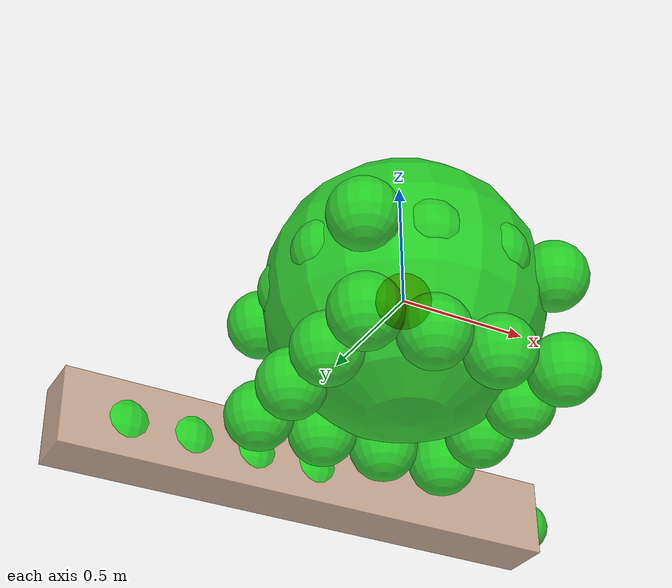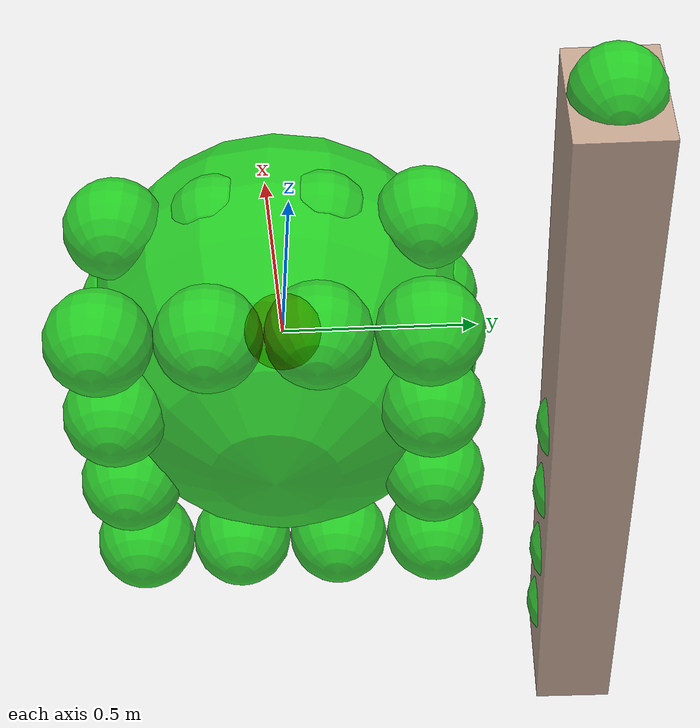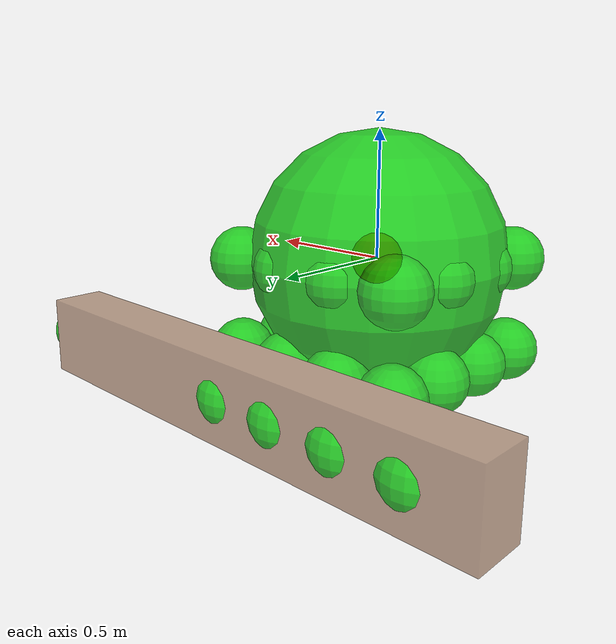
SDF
<?xml version="1.0"?>
<sdf version="1.7">
  <model name="simple_maze">
    <!-- Ghost body of negligible mass. -->
    <link name="sphere_ghost_body">
      <inertial>
        <mass>1.0e-6</mass>
        <inertia>
          <ixx>1.0e-6</ixx>
          <ixy>0</ixy>
          <ixz>0</ixz>
          <iyy>1.0e-6</iyy>
          <iyz>0</iyz>
          <izz>1.0e-6</izz>
        </inertia>
      </inertial>
    </link>
    <!-- The x slider will have an actuator with a corresponding input port
         in our MultibodyPlant model so that we can apply an external force.
    -->
    <joint name="sphere_x_slider" type="prismatic">
      <parent>world</parent>
      <child>sphere_ghost_body</child>
      <axis>
        <xyz>1 0 0</xyz>
      </axis>
    </joint>
    <!-- The y slider allows the box to freely move up and down. Thus, the
         box would free fall if it wasn't for the contact with the ground. -->
    <joint name="sphere_y_slider" type="prismatic">
      <parent>sphere_ghost_body</parent>
      <child>sphere_actuated</child>
      <axis>
        <xyz>0 1 0</xyz>
      </axis>
    </joint>
    <!-- The model for a solid box of uniform density. -->
    <link name="sphere_actuated">
      <inertial>
        <mass>1.0</mass>
        <inertia>
          <ixx>0.004</ixx>
          <ixy>0</ixy>
          <ixz>0</ixz>
          <iyy>0.004</iyy>
          <iyz>0</iyz>
          <izz>0.004</izz>
        </inertia>
      </inertial>
      <visual name="visual">
        <geometry>
          <sphere>
            <radius>0.1</radius>
          </sphere>
        </geometry>
        <material>
          <diffuse>1.0 0 0 1.0</diffuse>
        </material>
      </visual>
      <collision name="collision">
        <geometry>
          <sphere>
            <radius>0.1</radius>
          </sphere>
        </geometry>
        <surface>
          <friction>
            <ode>
              <mu>1.0</mu>
              <mu2>1.0</mu2>
            </ode>
          </friction>
        </surface>
      </collision>
    </link>

    <!-- The model for a solid box of uniform density. -->
    <link name="box_ghost_body_x">
      <inertial>
        <mass>1.0e-6</mass>
        <inertia>
          <ixx>1.0e-6</ixx>
          <ixy>0</ixy>
          <ixz>0</ixz>
          <iyy>1.0e-6</iyy>
          <iyz>0</iyz>
          <izz>1.0e-6</izz>
        </inertia>
      </inertial>
    </link>

    <link name="box_ghost_body_y">
      <inertial>
        <mass>1.0e-6</mass>
        <inertia>
          <ixx>1.0e-6</ixx>
          <ixy>0</ixy>
          <ixz>0</ixz>
          <iyy>1.0e-6</iyy>
          <iyz>0</iyz>
          <izz>1.0e-6</izz>
        </inertia>
      </inertial>
    </link>

    <joint name="box_x_slider" type="prismatic">
      <parent>world</parent>
      <child>box_ghost_body_x</child>
      <axis>
        <xyz>1 0 0</xyz>
        <!-- Drake attaches an actuator to all joints with a non-zero effort
             limit. We do not want an actuator for this joint. -->
        <limit>
          <effort>0</effort>
        </limit>
      	<dynamics>
      	  <damping>10.0</damping>
      	</dynamics>
      </axis>
    </joint>

    <joint name="y_slider" type="prismatic">
      <parent>box_ghost_body_x</parent>
      <child>box_ghost_body_y</child>
      <axis>
        <xyz>0 1 0</xyz>
        <!-- Drake attaches an actuator to all joints with a non-zero effort
             limit. We do not want an actuator for this joint and therefore we
             set a zero effort limit. -->
        <limit>
          <effort>0</effort>
        </limit>
      	<dynamics>
      	  <damping>10.0</damping>
      	</dynamics>
      </axis>
    </joint>

    <joint name="rotation" type="revolute">
      <parent>box_ghost_body_y</parent>
      <child>box</child>
      <axis>
        <xyz>0 0 1</xyz>
        <!-- Drake attaches an actuator to all joints with a non-zero effort
             limit. We do not want an actuator for this joint and therefore we
             set a zero effort limit. -->
        <limit>
          <effort>0</effort>
        </limit>
      	<dynamics>
      	  <damping>10.0</damping>
      	</dynamics>
      </axis>
    </joint>

    <link name="box">
      <inertial>
        <mass>5.0</mass>
        <inertia>
          <ixx>0.166666666666667</ixx>
          <ixy>0</ixy>
          <ixz>0</ixz>
          <iyy>0.166666666666667</iyy>
          <iyz>0</iyz>
          <izz>0.166666666666667</izz>
        </inertia>
      </inertial>

      <collision name="sphere_collision">
        <geometry>
          <sphere>
            <radius>0.505</radius>
          </sphere>
        </geometry>
      </collision>
      <visual name="sphere_collision_visual">
        <geometry>
          <sphere>
            <radius>0.505</radius>
          </sphere>
        </geometry>
        <material>
          <diffuse>0.0 0.8 0.0 0.8</diffuse>
        </material>
      </visual>

      <collision name="plus_x_plus_y_1">
        <pose> 0.375 0.125 0.0 0 0 0</pose>
        <geometry>
          <sphere>
            <radius>0.125</radius>
          </sphere>
        </geometry>
      </collision>
      <visual name="plus_x_plus_y_1">
        <pose> 0.375 0.125 0.0 0 0 0</pose>
        <geometry>
          <sphere>
            <radius>0.125</radius>
          </sphere>
        </geometry>
        <material>
          <diffuse>0.0 0.8 0.0 0.8</diffuse>
        </material>
      </visual>

      <collision name="plus_x_plus_y_2">
        <pose> 0.375 0.375 0.0 0 0 0</pose>
        <geometry>
          <sphere>
            <radius>0.125</radius>
          </sphere>
        </geometry>
      </collision>
      <visual name="plus_x_plus_y_2">
        <pose> 0.375 0.375 0.0 0 0 0</pose>
        <geometry>
          <sphere>
            <radius>0.125</radius>
          </sphere>
        </geometry>
        <material>
          <diffuse>0.0 0.8 0.0 0.8</diffuse>
        </material>
      </visual>

      <collision name="plus_x_plus_y_3">
        <pose> 0.125 0.375 0.0 0 0 0</pose>
        <geometry>
          <sphere>
            <radius>0.125</radius>
          </sphere>
        </geometry>
      </collision>
      <visual name="plus_x_plus_y_3">
        <pose> 0.125 0.375 0.0 0 0 0</pose>
        <geometry>
          <sphere>
            <radius>0.125</radius>
          </sphere>
        </geometry>
        <material>
          <diffuse>0.0 0.8 0.0 0.8</diffuse>
        </material>
      </visual>

      <collision name="plus_x_minus_y_1">
        <pose> 0.375 -0.125 0.0 0 0 0</pose>
        <geometry>
          <sphere>
            <radius>0.125</radius>
          </sphere>
        </geometry>
      </collision>
      <visual name="plus_x_minus_y_1">
        <pose> 0.375 -0.125 0.0 0 0 0</pose>
        <geometry>
          <sphere>
            <radius>0.125</radius>
          </sphere>
        </geometry>
        <material>
          <diffuse>0.0 0.8 0.0 0.8</diffuse>
        </material>
      </visual>

      <collision name="plus_x_minus_y_2">
        <pose> 0.375 -0.375 0.0 0 0 0</pose>
        <geometry>
          <sphere>
            <radius>0.125</radius>
          </sphere>
        </geometry>
      </collision>
      <visual name="plus_x_minus_y_2">
        <pose> 0.375 -0.375 0.0 0 0 0</pose>
        <geometry>
          <sphere>
            <radius>0.125</radius>
          </sphere>
        </geometry>
        <material>
          <diffuse>0.0 0.8 0.0 0.8</diffuse>
        </material>
      </visual>

      <collision name="plus_x_minus_y_3">
        <pose> 0.125 -0.375 0.0 0 0 0</pose>
        <geometry>
          <sphere>
            <radius>0.125</radius>
          </sphere>
        </geometry>
      </collision>
      <visual name="plus_x_minus_y_3">
        <pose> 0.125 -0.375 0.0 0 0 0</pose>
        <geometry>
          <sphere>
            <radius>0.125</radius>
          </sphere>
        </geometry>
        <material>
          <diffuse>0.0 0.8 0.0 0.8</diffuse>
        </material>
      </visual>

      <collision name="minus_x_plus_y_1">
        <pose> -0.375 0.125 0.0 0 0 0</pose>
        <geometry>
          <sphere>
            <radius>0.125</radius>
          </sphere>
        </geometry>
      </collision>
      <visual name="minus_x_plus_y_1">
        <pose> -0.375 0.125 0.0 0 0 0</pose>
        <geometry>
          <sphere>
            <radius>0.125</radius>
          </sphere>
        </geometry>
        <material>
          <diffuse>0.0 0.8 0.0 0.8</diffuse>
        </material>
      </visual>

      <collision name="minus_x_plus_y_2">
        <pose> -0.375 0.375 0.0 0 0 0</pose>
        <geometry>
          <sphere>
            <radius>0.125</radius>
          </sphere>
        </geometry>
      </collision>
      <visual name="minus_x_plus_y_2">
        <pose> -0.375 0.375 0.0 0 0 0</pose>
        <geometry>
          <sphere>
            <radius>0.125</radius>
          </sphere>
        </geometry>
        <material>
          <diffuse>0.0 0.8 0.0 0.8</diffuse>
        </material>
      </visual>

      <collision name="minus_x_plus_y_3">
        <pose> -0.125 0.375 0.0 0 0 0</pose>
        <geometry>
          <sphere>
            <radius>0.125</radius>
          </sphere>
        </geometry>
      </collision>
      <visual name="minus_x_plus_y_3">
        <pose> -0.125 0.375 0.0 0 0 0</pose>
        <geometry>
          <sphere>
            <radius>0.125</radius>
          </sphere>
        </geometry>
        <material>
          <diffuse>0.0 0.8 0.0 0.8</diffuse>
        </material>
      </visual>

      <collision name="minus_x_minus_y_1">
        <pose> -0.375 -0.125 0.0 0 0 0</pose>
        <geometry>
          <sphere>
            <radius>0.125</radius>
          </sphere>
        </geometry>
      </collision>
      <visual name="minus_x_minus_y_1">
        <pose> -0.375 -0.125 0.0 0 0 0</pose>
        <geometry>
          <sphere>
            <radius>0.125</radius>
          </sphere>
        </geometry>
        <material>
          <diffuse>0.0 0.8 0.0 0.8</diffuse>
        </material>
      </visual>

      <collision name="minus_x_minus_y_2">
        <pose> -0.375 -0.375 0.0 0 0 0</pose>
        <geometry>
          <sphere>
            <radius>0.125</radius>
          </sphere>
        </geometry>
      </collision>
      <visual name="minus_x_minus_y_2">
        <pose> -0.375 -0.375 0.0 0 0 0</pose>
        <geometry>
          <sphere>
            <radius>0.125</radius>
          </sphere>
        </geometry>
        <material>
          <diffuse>0.0 0.8 0.0 0.8</diffuse>
        </material>
      </visual>

      <collision name="minus_x_minus_y_3">
        <pose> -0.125 -0.375 0.0 0 0 0</pose>
        <geometry>
          <sphere>
            <radius>0.125</radius>
          </sphere>
        </geometry>
      </collision>
      <visual name="minus_x_minus_y_3">
        <pose> -0.125 -0.375 0.0 0 0 0</pose>
        <geometry>
          <sphere>
            <radius>0.125</radius>
          </sphere>
        </geometry>
        <material>
          <diffuse>0.0 0.8 0.0 0.8</diffuse>
        </material>
      </visual>

      <collision name="bottom_plus_x_plus_y_1">
        <pose> 0.375 0.125 -0.375 0 0 0</pose>
        <geometry>
          <sphere>
            <radius>0.125</radius>
          </sphere>
        </geometry>
      </collision>
      <visual name="bottom_plus_x_plus_y_1">
        <pose> 0.375 0.125 -0.375 0 0 0</pose>
        <geometry>
          <sphere>
            <radius>0.125</radius>
          </sphere>
        </geometry>
        <material>
          <diffuse>0.0 0.8 0.0 0.8</diffuse>
        </material>
      </visual>

      <collision name="bottom_plus_x_plus_y_2">
        <pose> 0.375 0.375 -0.375 0 0 0</pose>
        <geometry>
          <sphere>
            <radius>0.125</radius>
          </sphere>
        </geometry>
      </collision>
      <visual name="bottom_plus_x_plus_y_2">
        <pose> 0.375 0.375 -0.375 0 0 0</pose>
        <geometry>
          <sphere>
            <radius>0.125</radius>
          </sphere>
        </geometry>
        <material>
          <diffuse>0.0 0.8 0.0 0.8</diffuse>
        </material>
      </visual>

      <collision name="bottom_plus_x_plus_y_3">
        <pose> 0.125 0.375 -0.375 0 0 0</pose>
        <geometry>
          <sphere>
            <radius>0.125</radius>
          </sphere>
        </geometry>
      </collision>
      <visual name="bottom_plus_x_plus_y_3">
        <pose> 0.125 0.375 -0.375 0 0 0</pose>
        <geometry>
          <sphere>
            <radius>0.125</radius>
          </sphere>
        </geometry>
        <material>
          <diffuse>0.0 0.8 0.0 0.8</diffuse>
        </material>
      </visual>

      <collision name="bottom_plus_x_minus_y_1">
        <pose> 0.375 -0.125 -0.375 0 0 0</pose>
        <geometry>
          <sphere>
            <radius>0.125</radius>
          </sphere>
        </geometry>
      </collision>
      <visual name="bottom_plus_x_minus_y_1">
        <pose> 0.375 -0.125 -0.375 0 0 0</pose>
        <geometry>
          <sphere>
            <radius>0.125</radius>
          </sphere>
        </geometry>
        <material>
          <diffuse>0.0 0.8 0.0 0.8</diffuse>
        </material>
      </visual>

      <collision name="bottom_plus_x_minus_y_2">
        <pose> 0.375 -0.375 -0.375 0 0 0</pose>
        <geometry>
          <sphere>
            <radius>0.125</radius>
          </sphere>
        </geometry>
      </collision>
      <visual name="bottom_plus_x_minus_y_2">
        <pose> 0.375 -0.375 -0.375 0 0 0</pose>
        <geometry>
          <sphere>
            <radius>0.125</radius>
          </sphere>
        </geometry>
        <material>
          <diffuse>0.0 0.8 0.0 0.8</diffuse>
        </material>
      </visual>

      <collision name="bottom_plus_x_minus_y_3">
        <pose> 0.125 -0.375 -0.375 0 0 0</pose>
        <geometry>
          <sphere>
            <radius>0.125</radius>
          </sphere>
        </geometry>
      </collision>
      <visual name="bottom_plus_x_minus_y_3">
        <pose> 0.125 -0.375 -0.375 0 0 0</pose>
        <geometry>
          <sphere>
            <radius>0.125</radius>
          </sphere>
        </geometry>
        <material>
          <diffuse>0.0 0.8 0.0 0.8</diffuse>
        </material>
      </visual>

      <collision name="bottom_minus_x_plus_y_1">
        <pose> -0.375 0.125 -0.375 0 0 0</pose>
        <geometry>
          <sphere>
            <radius>0.125</radius>
          </sphere>
        </geometry>
      </collision>
      <visual name="bottom_minus_x_plus_y_1">
        <pose> -0.375 0.125 -0.375 0 0 0</pose>
        <geometry>
          <sphere>
            <radius>0.125</radius>
          </sphere>
        </geometry>
        <material>
          <diffuse>0.0 0.8 0.0 0.8</diffuse>
        </material>
      </visual>

      <collision name="bottom_minus_x_plus_y_2">
        <pose> -0.375 0.375 -0.375 0 0 0</pose>
        <geometry>
          <sphere>
            <radius>0.125</radius>
          </sphere>
        </geometry>
      </collision>
      <visual name="bottom_minus_x_plus_y_2">
        <pose> -0.375 0.375 -0.375 0 0 0</pose>
        <geometry>
          <sphere>
            <radius>0.125</radius>
          </sphere>
        </geometry>
        <material>
          <diffuse>0.0 0.8 0.0 0.8</diffuse>
        </material>
      </visual>

      <collision name="bottom_minus_x_plus_y_3">
        <pose> -0.125 0.375 -0.375 0 0 0</pose>
        <geometry>
          <sphere>
            <radius>0.125</radius>
          </sphere>
        </geometry>
      </collision>
      <visual name="bottom_minus_x_plus_y_3">
        <pose> -0.125 0.375 -0.375 0 0 0</pose>
        <geometry>
          <sphere>
            <radius>0.125</radius>
          </sphere>
        </geometry>
        <material>
          <diffuse>0.0 0.8 0.0 0.8</diffuse>
        </material>
      </visual>

      <collision name="bottom_minus_x_minus_y_1">
        <pose> -0.375 -0.125 -0.375 0 0 0</pose>
        <geometry>
          <sphere>
            <radius>0.125</radius>
          </sphere>
        </geometry>
      </collision>
      <visual name="bottom_minus_x_minus_y_1">
        <pose> -0.375 -0.125 -0.375 0 0 0</pose>
        <geometry>
          <sphere>
            <radius>0.125</radius>
          </sphere>
        </geometry>
        <material>
          <diffuse>0.0 0.8 0.0 0.8</diffuse>
        </material>
      </visual>

      <collision name="bottom_minus_x_minus_y_2">
        <pose> -0.375 -0.375 -0.375 0 0 0</pose>
        <geometry>
          <sphere>
            <radius>0.125</radius>
          </sphere>
        </geometry>
      </collision>
      <visual name="bottom_minus_x_minus_y_2">
        <pose> -0.375 -0.375 -0.375 0 0 0</pose>
        <geometry>
          <sphere>
            <radius>0.125</radius>
          </sphere>
        </geometry>
        <material>
          <diffuse>0.0 0.8 0.0 0.8</diffuse>
        </material>
      </visual>

      <collision name="bottom_minus_x_minus_y_3">
        <pose> -0.125 -0.375 -0.375 0 0 0</pose>
        <geometry>
          <sphere>
            <radius>0.125</radius>
          </sphere>
        </geometry>
      </collision>
      <visual name="bottom_minus_x_minus_y_3">
        <pose> -0.125 -0.375 -0.375 0 0 0</pose>
        <geometry>
          <sphere>
            <radius>0.125</radius>
          </sphere>
        </geometry>
        <material>
          <diffuse>0.0 0.8 0.0 0.8</diffuse>
        </material>
      </visual>

    </link>

    <link name="wall">
    <visual name='visual'>
      <pose> 0 0.75 -0.35 0 0 0 </pose>
      <geometry>
        <box>
         <size>2.0 0.2 0.3</size>
        </box>
      </geometry>
      <material>
        <diffuse>0.75 0.6 0.5 0.8</diffuse>
      </material>
    </visual>

    <collision name='collision'>
      <pose> 0 0.75 -0.35 0 0 0 </pose>
      <geometry>
        <box>
         <size>2.0 0.2 0.3</size>
        </box>
      </geometry>

      <surface>
        <friction>
        <ode>
          <mu>0.5</mu>
          <mu2>0.5</mu2>
        </ode>
        </friction>
      </surface>
    </collision>

    <collision name='sphere_collision_center'>
      <pose> 0 0.75 -0.35 0 0 0 </pose>
      <geometry>
        <sphere>
          <radius>0.125</radius>
        </sphere>
      </geometry>
    </collision>
    <visual name='sphere_collision_center'>
      <pose> 0 0.75 -0.35 0 0 0 </pose>
      <geometry>
        <sphere>
          <radius>0.125</radius>
        </sphere>
      </geometry>
      <material>
        <diffuse>0.0 0.8 0.0 0.8</diffuse>
      </material>
    </visual>

    <collision name='sphere_collision_plus_x_1'>
      <pose> 0.25 0.75 -0.35 0 0 0 </pose>
      <geometry>
        <sphere>
          <radius>0.1</radius>
        </sphere>
      </geometry>
    </collision>
    <visual name='sphere_collision_plus_x_1'>
      <pose> 0.25 0.75 -0.35 0 0 0 </pose>
      <geometry>
        <sphere>
          <radius>0.1</radius>
        </sphere>
      </geometry>
      <material>
        <diffuse>0.0 0.8 0.0 0.8</diffuse>
      </material>
    </visual>

    <collision name='sphere_collision_plus_x_2'>
      <pose> 0.5 0.75 -0.35 0 0 0 </pose>
      <geometry>
        <sphere>
          <radius>0.1</radius>
        </sphere>
      </geometry>
    </collision>
    <visual name='sphere_collision_plus_x_2'>
      <pose> 0.5 0.75 -0.35 0 0 0 </pose>
      <geometry>
        <sphere>
          <radius>0.1</radius>
        </sphere>
      </geometry>
      <material>
        <diffuse>0.0 0.8 0.0 0.8</diffuse>
      </material>
    </visual>

    <collision name='sphere_collision_plus_x_3'>
      <pose> 0.75 0.75 -0.35 0 0 0 </pose>
      <geometry>
        <sphere>
          <radius>0.1</radius>
        </sphere>
      </geometry>
    </collision>
    <visual name='sphere_collision_plus_x_3'>
      <pose> 0.75 0.75 -0.35 0 0 0 </pose>
      <geometry>
        <sphere>
          <radius>0.1</radius>
        </sphere>
      </geometry>
      <material>
        <diffuse>0.0 0.8 0.0 0.8</diffuse>
      </material>
    </visual>

    <collision name='sphere_collision_plus_x_4'>
      <pose> 1.0 0.75 -0.35 0 0 0 </pose>
      <geometry>
        <sphere>
          <radius>0.1</radius>
        </sphere>
      </geometry>
    </collision>
    <visual name='sphere_collision_plus_x_4'>
      <pose> 1.0 0.75 -0.35 0 0 0 </pose>
      <geometry>
        <sphere>
          <radius>0.1</radius>
        </sphere>
      </geometry>
      <material>
        <diffuse>0.0 0.8 0.0 0.8</diffuse>
      </material>
    </visual>

    <collision name='sphere_collision_minus_x_1'>
      <pose> -0.25 0.75 -0.35 0 0 0 </pose>
      <geometry>
        <sphere>
          <radius>0.125</radius>
        </sphere>
      </geometry>
    </collision>
    <visual name='sphere_collision_minus_x_1'>
      <pose> -0.25 0.75 -0.35 0 0 0 </pose>
      <geometry>
        <sphere>
          <radius>0.125</radius>
        </sphere>
      </geometry>
      <material>
        <diffuse>0.0 0.8 0.0 0.8</diffuse>
      </material>
    </visual>

    <collision name='sphere_collision_minus_x_2'>
      <pose> -0.5 0.75 -0.35 0 0 0 </pose>
      <geometry>
        <sphere>
          <radius>0.125</radius>
        </sphere>
      </geometry>
    </collision>
    <visual name='sphere_collision_minus_x_2'>
      <pose> -0.5 0.75 -0.35 0 0 0 </pose>
      <geometry>
        <sphere>
          <radius>0.125</radius>
        </sphere>
      </geometry>
      <material>
        <diffuse>0.0 0.8 0.0 0.8</diffuse>
      </material>
    </visual>

    <collision name='sphere_collision_minus_x_3'>
      <pose> -0.75 0.75 -0.35 0 0 0 </pose>
      <geometry>
        <sphere>
          <radius>0.125</radius>
        </sphere>
      </geometry>
    </collision>
    <visual name='sphere_collision_minus_x_3'>
      <pose> -0.75 0.75 -0.35 0 0 0 </pose>
      <geometry>
        <sphere>
          <radius>0.125</radius>
        </sphere>
      </geometry>
      <material>
        <diffuse>0.0 0.8 0.0 0.8</diffuse>
      </material>
    </visual>

    </link>
    <joint name="world_to_wall" type="fixed">
      <parent>world</parent>
      <child>wall</child>
      <axis>
        <xyz>1 0 0</xyz>
      </axis>
    </joint>
  </model>
</sdf>
